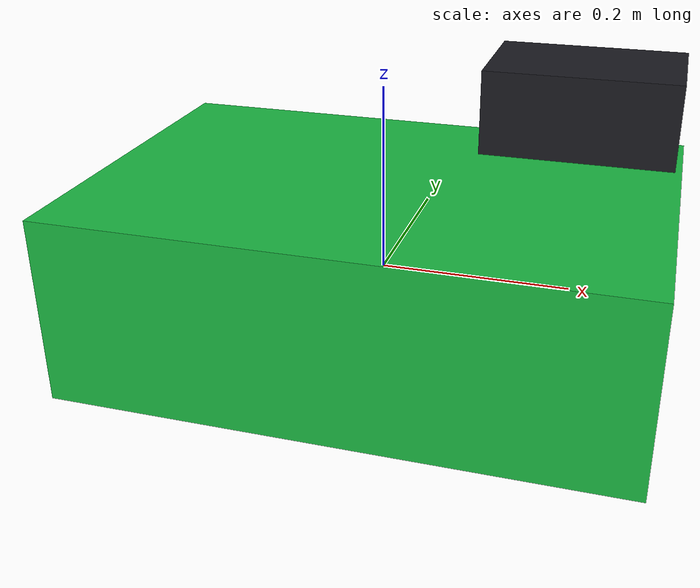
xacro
<?xml version="1.0"?>
<robot xmlns:xacro="http://www.ros.org/wiki/xacro" name="macroed_robot">
  <xacro:property name="body_length" value="0.6"/>
  <xacro:property name="body_width" value="0.4"/>
  <xacro:property name="body_height" value="0.2"/>

  <xacro:macro name="box_link" params="name size color">
    <link name="${name}">
      <visual>
        <geometry>
          <box size="${size}"/>
        </geometry>
        <material name="${color}"/>
      </visual>
      <collision>
        <geometry>
          <box size="${size}"/>
        </geometry>
      </collision>
    </link>
  </xacro:macro>

  <material name="green">
    <color rgba="0.1 0.7 0.25 1"/>
  </material>
  <material name="dark">
    <color rgba="0.1 0.1 0.12 1"/>
  </material>

  <xacro:box_link name="base_link" size="${body_length} ${body_width} ${body_height}" color="green"/>
  <xacro:box_link name="sensor_link" size="0.18 0.12 0.08" color="dark"/>

  <joint name="sensor_joint" type="fixed">
    <parent link="base_link"/>
    <child link="sensor_link"/>
    <origin xyz="0.2 0 ${body_height}" rpy="0 0 0"/>
  </joint>
</robot>
